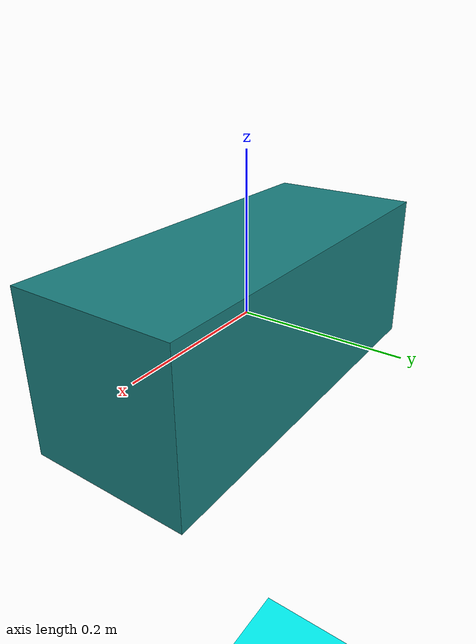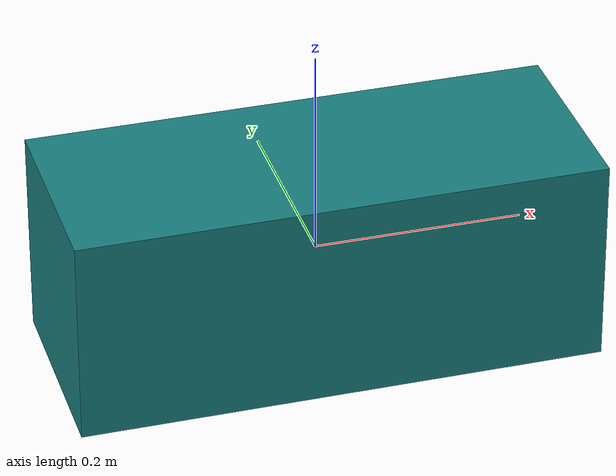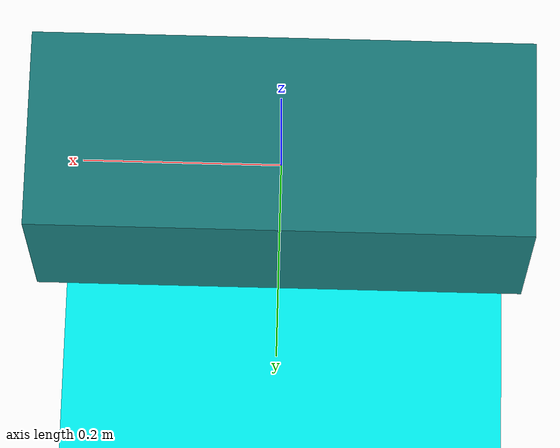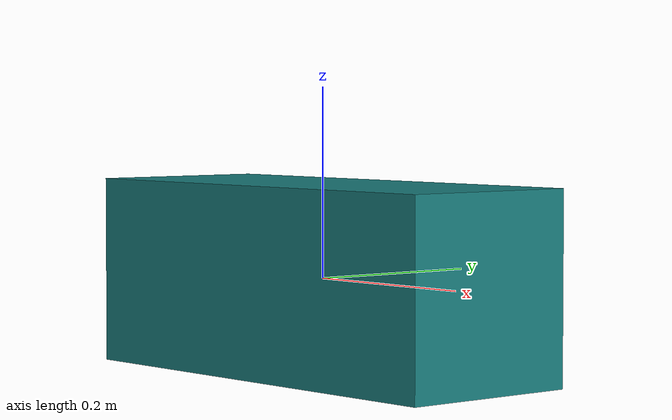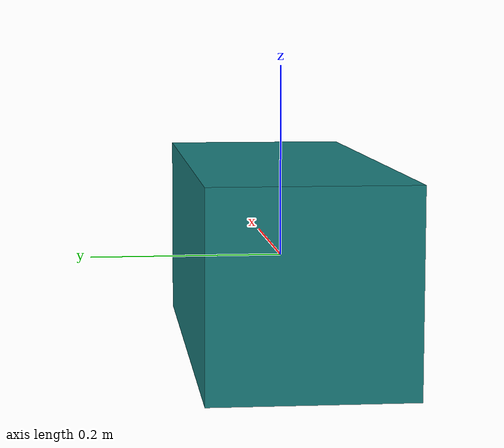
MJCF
<mujoco model="box_push">
<!-- Copyright (c) 2023 Boston Dynamics AI Institute LLC. All rights reserved. -->
  <option timestep="0.01" />
  <asset>
    <texture name="blue_grid" type="2d" builtin="checker" rgb1=".02 .14 .44" rgb2=".27 .55 1" width="300" height="300" mark="edge" markrgb="1 1 1"/>
    <material name="blue_grid" texture="blue_grid" texrepeat="1 1" texuniform="true" reflectance=".2"/>
  </asset>

  <default>
    <default class="slider">
      <position kp="10" ctrlrange="-10 10"/>
    </default>
  </default>

  <worldbody>
    <body name="ground">
      <geom mass="0" name="ground" pos="0 0 -1" condim="3" size="10.0 10.0 0.10" rgba="0 1 1 1" type="box" material="blue_grid"/>
    </body>

    <body name="object" pos="0 0 0">
      <joint name="slider_object" damping="1" type="slide" axis="1 0 0" />
      <geom name="object" type="box" size="0.25 0.1 0.1" mass="1" rgba=".1 .5 .5 1"/>
      <site pos="0 0 0" name="site_object"/>
    </body>

    <body name="cart" pos="0 0 0">
      <joint name="slider" damping="1" type="slide" axis="1 0 0" />
      <geom name="cart" type="box" size="0.25 0.1 0.1" mass="1" rgba=".9 .5 .5 1"/>
      <site pos="0 0 0" name="site_cart"/>
    </body>
  </worldbody>

  <contact>
    <exclude body1="object" body2="ground"/>
    <exclude body1="cart" body2="ground"/>
  </contact>

  <sensor>
    <framepos objtype="site" objname="site_cart" reftype="site" refname="site_object"/>
  </sensor>
  <actuator>
    <position name="actuator_cart" joint="slider" class="slider" />
  </actuator>
</mujoco>
